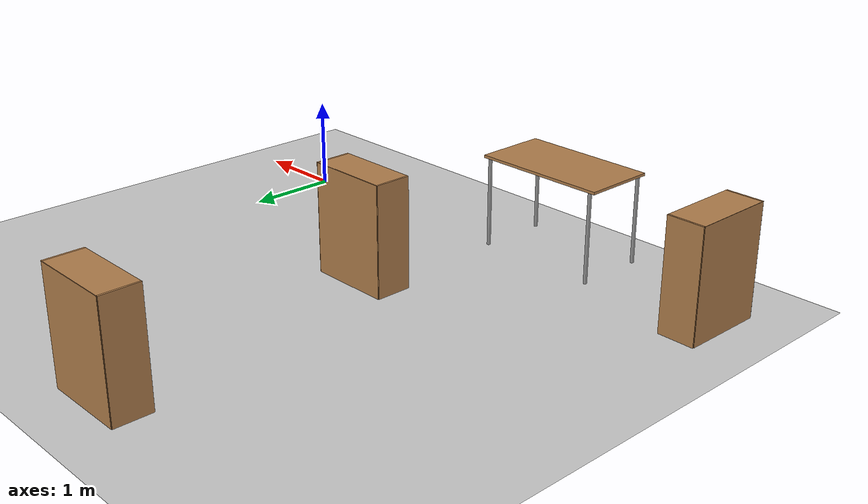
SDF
<sdf version="1.7">
 <world name="default">
  <model name="ground_plane">
   <static>1</static>
   <link name="link">
    <collision name="collision">
     <geometry><plane><normal>0 0 1</normal><size>100 100</size></plane></geometry>
     <surface>
      <contact><collide_bitmask>65535</collide_bitmask></contact>
      <friction><ode><mu>100</mu><mu2>50</mu2></ode></friction>
     </surface>
    </collision>
    <visual name="visual">
     <cast_shadows>0</cast_shadows>
     <geometry><plane><normal>0 0 1</normal><size>100 100</size></plane></geometry>
     <material>
      <script><uri>file://media/materials/scripts/gazebo.material</uri><name>Gazebo/Grey</name></script>
     </material>
    </visual>
   </link>
  </model>
  <model name="bookshelf">
   <static>1</static>
   <link name="link">
    <inertial><mass>1</mass></inertial>
    <collision name="back">
     <pose>0 0.005 0.6 0 -0 0</pose>
     <geometry><box><size>0.9 0.01 1.2</size></box></geometry>
    </collision>
    <visual name="visual1">
     <pose>0 0.005 0.6 0 -0 0</pose>
     <geometry><box><size>0.9 0.01 1.2</size></box></geometry>
     <material>
      <script><uri>file://media/materials/scripts/gazebo.material</uri><name>Gazebo/Wood</name></script>
     </material>
    </visual>
    <collision name="left_side">
     <pose>0.45 -0.195 0.6 0 -0 0</pose>
     <geometry><box><size>0.02 0.4 1.2</size></box></geometry>
    </collision>
    <visual name="visual2">
     <pose>0.45 -0.195 0.6 0 -0 0</pose>
     <geometry><box><size>0.02 0.4 1.2</size></box></geometry>
     <material>
      <script><uri>file://media/materials/scripts/gazebo.material</uri><name>Gazebo/Wood</name></script>
     </material>
    </visual>
    <collision name="right_side">
     <pose>-0.45 -0.195 0.6 0 -0 0</pose>
     <geometry><box><size>0.02 0.4 1.2</size></box></geometry>
    </collision>
    <visual name="visual3">
     <pose>-0.45 -0.195 0.6 0 -0 0</pose>
     <geometry><box><size>0.02 0.4 1.2</size></box></geometry>
     <material>
      <script><uri>file://media/materials/scripts/gazebo.material</uri><name>Gazebo/Wood</name></script>
     </material>
    </visual>
    <collision name="bottom">
     <pose>0 -0.195 0.03 0 -0 0</pose>
     <geometry><box><size>0.88 0.4 0.06</size></box></geometry>
    </collision>
    <visual name="visual4">
     <pose>0 -0.195 0.03 0 -0 0</pose>
     <geometry><box><size>0.88 0.4 0.06</size></box></geometry>
     <material>
      <script><uri>file://media/materials/scripts/gazebo.material</uri><name>Gazebo/Wood</name></script>
     </material>
    </visual>
    <collision name="top">
     <pose>0 -0.195 1.19 0 -0 0</pose>
     <geometry><box><size>0.88 0.4 0.02</size></box></geometry>
    </collision>
    <visual name="visual5">
     <pose>0 -0.195 1.19 0 -0 0</pose>
     <geometry><box><size>0.88 0.4 0.02</size></box></geometry>
     <material>
      <script><uri>file://media/materials/scripts/gazebo.material</uri><name>Gazebo/Wood</name></script>
     </material>
    </visual>
    <collision name="low_shelf">
     <pose>0 -0.195 0.43 0 -0 0</pose>
     <geometry><box><size>0.88 0.4 0.02</size></box></geometry>
    </collision>
    <visual name="visual6">
     <pose>0 -0.195 0.43 0 -0 0</pose>
     <geometry><box><size>0.88 0.4 0.02</size></box></geometry>
     <material>
      <script><uri>file://media/materials/scripts/gazebo.material</uri><name>Gazebo/Wood</name></script>
     </material>
    </visual>
    <collision name="high_shelf">
     <pose>0 -0.195 0.8 0 -0 0</pose>
     <geometry><box><size>0.88 0.4 0.02</size></box></geometry>
    </collision>
    <visual name="visual7">
     <pose>0 -0.195 0.8 0 -0 0</pose>
     <geometry><box><size>0.88 0.4 0.02</size></box></geometry>
     <material>
      <script><uri>file://media/materials/scripts/gazebo.material</uri><name>Gazebo/Wood</name></script>
     </material>
    </visual>
   </link>
   <pose>-2.46761 1.66972 0 0 -0 0</pose>
  </model>
  <model name="bookshelf_1">
   <static>1</static>
   <link name="link">
    <inertial><mass>1</mass></inertial>
    <collision name="back">
     <pose>0 0.005 0.6 0 -0 0</pose>
     <geometry><box><size>0.9 0.01 1.2</size></box></geometry>
    </collision>
    <visual name="visual1">
     <pose>0 0.005 0.6 0 -0 0</pose>
     <geometry><box><size>0.9 0.01 1.2</size></box></geometry>
     <material>
      <script><uri>file://media/materials/scripts/gazebo.material</uri><name>Gazebo/Wood</name></script>
     </material>
    </visual>
    <collision name="left_side">
     <pose>0.45 -0.195 0.6 0 -0 0</pose>
     <geometry><box><size>0.02 0.4 1.2</size></box></geometry>
    </collision>
    <visual name="visual2">
     <pose>0.45 -0.195 0.6 0 -0 0</pose>
     <geometry><box><size>0.02 0.4 1.2</size></box></geometry>
     <material>
      <script><uri>file://media/materials/scripts/gazebo.material</uri><name>Gazebo/Wood</name></script>
     </material>
    </visual>
    <collision name="right_side">
     <pose>-0.45 -0.195 0.6 0 -0 0</pose>
     <geometry><box><size>0.02 0.4 1.2</size></box></geometry>
    </collision>
    <visual name="visual3">
     <pose>-0.45 -0.195 0.6 0 -0 0</pose>
     <geometry><box><size>0.02 0.4 1.2</size></box></geometry>
     <material>
      <script><uri>file://media/materials/scripts/gazebo.material</uri><name>Gazebo/Wood</name></script>
     </material>
    </visual>
    <collision name="bottom">
     <pose>0 -0.195 0.03 0 -0 0</pose>
     <geometry><box><size>0.88 0.4 0.06</size></box></geometry>
    </collision>
    <visual name="visual4">
     <pose>0 -0.195 0.03 0 -0 0</pose>
     <geometry><box><size>0.88 0.4 0.06</size></box></geometry>
     <material>
      <script><uri>file://media/materials/scripts/gazebo.material</uri><name>Gazebo/Wood</name></script>
     </material>
    </visual>
    <collision name="top">
     <pose>0 -0.195 1.19 0 -0 0</pose>
     <geometry><box><size>0.88 0.4 0.02</size></box></geometry>
    </collision>
    <visual name="visual5">
     <pose>0 -0.195 1.19 0 -0 0</pose>
     <geometry><box><size>0.88 0.4 0.02</size></box></geometry>
     <material>
      <script><uri>file://media/materials/scripts/gazebo.material</uri><name>Gazebo/Wood</name></script>
     </material>
    </visual>
    <collision name="low_shelf">
     <pose>0 -0.195 0.43 0 -0 0</pose>
     <geometry><box><size>0.88 0.4 0.02</size></box></geometry>
    </collision>
    <visual name="visual6">
     <pose>0 -0.195 0.43 0 -0 0</pose>
     <geometry><box><size>0.88 0.4 0.02</size></box></geometry>
     <material>
      <script><uri>file://media/materials/scripts/gazebo.material</uri><name>Gazebo/Wood</name></script>
     </material>
    </visual>
    <collision name="high_shelf">
     <pose>0 -0.195 0.8 0 -0 0</pose>
     <geometry><box><size>0.88 0.4 0.02</size></box></geometry>
    </collision>
    <visual name="visual7">
     <pose>0 -0.195 0.8 0 -0 0</pose>
     <geometry><box><size>0.88 0.4 0.02</size></box></geometry>
     <material>
      <script><uri>file://media/materials/scripts/gazebo.material</uri><name>Gazebo/Wood</name></script>
     </material>
    </visual>
   </link>
   <pose>-5.63291 -0.214127 0 0 -0 1.56163</pose>
  </model>
  <model name="bookshelf_2">
   <static>1</static>
   <link name="link">
    <inertial><mass>1</mass></inertial>
    <collision name="back">
     <pose>0 0.005 0.6 0 -0 0</pose>
     <geometry><box><size>0.9 0.01 1.2</size></box></geometry>
    </collision>
    <visual name="visual1">
     <pose>0 0.005 0.6 0 -0 0</pose>
     <geometry><box><size>0.9 0.01 1.2</size></box></geometry>
     <material>
      <script><uri>file://media/materials/scripts/gazebo.material</uri><name>Gazebo/Wood</name></script>
     </material>
    </visual>
    <collision name="left_side">
     <pose>0.45 -0.195 0.6 0 -0 0</pose>
     <geometry><box><size>0.02 0.4 1.2</size></box></geometry>
    </collision>
    <visual name="visual2">
     <pose>0.45 -0.195 0.6 0 -0 0</pose>
     <geometry><box><size>0.02 0.4 1.2</size></box></geometry>
     <material>
      <script><uri>file://media/materials/scripts/gazebo.material</uri><name>Gazebo/Wood</name></script>
     </material>
    </visual>
    <collision name="right_side">
     <pose>-0.45 -0.195 0.6 0 -0 0</pose>
     <geometry><box><size>0.02 0.4 1.2</size></box></geometry>
    </collision>
    <visual name="visual3">
     <pose>-0.45 -0.195 0.6 0 -0 0</pose>
     <geometry><box><size>0.02 0.4 1.2</size></box></geometry>
     <material>
      <script><uri>file://media/materials/scripts/gazebo.material</uri><name>Gazebo/Wood</name></script>
     </material>
    </visual>
    <collision name="bottom">
     <pose>0 -0.195 0.03 0 -0 0</pose>
     <geometry><box><size>0.88 0.4 0.06</size></box></geometry>
    </collision>
    <visual name="visual4">
     <pose>0 -0.195 0.03 0 -0 0</pose>
     <geometry><box><size>0.88 0.4 0.06</size></box></geometry>
     <material>
      <script><uri>file://media/materials/scripts/gazebo.material</uri><name>Gazebo/Wood</name></script>
     </material>
    </visual>
    <collision name="top">
     <pose>0 -0.195 1.19 0 -0 0</pose>
     <geometry><box><size>0.88 0.4 0.02</size></box></geometry>
    </collision>
    <visual name="visual5">
     <pose>0 -0.195 1.19 0 -0 0</pose>
     <geometry><box><size>0.88 0.4 0.02</size></box></geometry>
     <material>
      <script><uri>file://media/materials/scripts/gazebo.material</uri><name>Gazebo/Wood</name></script>
     </material>
    </visual>
    <collision name="low_shelf">
     <pose>0 -0.195 0.43 0 -0 0</pose>
     <geometry><box><size>0.88 0.4 0.02</size></box></geometry>
    </collision>
    <visual name="visual6">
     <pose>0 -0.195 0.43 0 -0 0</pose>
     <geometry><box><size>0.88 0.4 0.02</size></box></geometry>
     <material>
      <script><uri>file://media/materials/scripts/gazebo.material</uri><name>Gazebo/Wood</name></script>
     </material>
    </visual>
    <collision name="high_shelf">
     <pose>0 -0.195 0.8 0 -0 0</pose>
     <geometry><box><size>0.88 0.4 0.02</size></box></geometry>
    </collision>
    <visual name="visual7">
     <pose>0 -0.195 0.8 0 -0 0</pose>
     <geometry><box><size>0.88 0.4 0.02</size></box></geometry>
     <material>
      <script><uri>file://media/materials/scripts/gazebo.material</uri><name>Gazebo/Wood</name></script>
     </material>
    </visual>
   </link>
   <pose>-2.78869 4.8124 0 0 -0 0</pose>
  </model>
  <model name="table">
   <static>1</static>
   <link name="link">
    <collision name="surface">
     <pose>0 0 1 0 -0 0</pose>
     <geometry><box><size>1.5 0.8 0.03</size></box></geometry>
     <surface><friction><ode><mu>0.6</mu><mu2>0.6</mu2></ode></friction></surface>
    </collision>
    <visual name="visual1">
     <pose>0 0 1 0 -0 0</pose>
     <geometry><box><size>1.5 0.8 0.03</size></box></geometry>
     <material>
      <script><uri>file://media/materials/scripts/gazebo.material</uri><name>Gazebo/Wood</name></script>
     </material>
    </visual>
    <collision name="front_left_leg">
     <pose>0.68 0.38 0.5 0 -0 0</pose>
     <geometry><cylinder><radius>0.02</radius><length>1</length></cylinder></geometry>
    </collision>
    <visual name="front_left_leg">
     <pose>0.68 0.38 0.5 0 -0 0</pose>
     <geometry><cylinder><radius>0.02</radius><length>1</length></cylinder></geometry>
     <material>
      <script><uri>file://media/materials/scripts/gazebo.material</uri><name>Gazebo/Grey</name></script>
     </material>
    </visual>
    <collision name="front_right_leg">
     <pose>0.68 -0.38 0.5 0 -0 0</pose>
     <geometry><cylinder><radius>0.02</radius><length>1</length></cylinder></geometry>
    </collision>
    <visual name="front_right_leg">
     <pose>0.68 -0.38 0.5 0 -0 0</pose>
     <geometry><cylinder><radius>0.02</radius><length>1</length></cylinder></geometry>
     <material>
      <script><uri>file://media/materials/scripts/gazebo.material</uri><name>Gazebo/Grey</name></script>
     </material>
    </visual>
    <collision name="back_right_leg">
     <pose>-0.68 -0.38 0.5 0 -0 0</pose>
     <geometry><cylinder><radius>0.02</radius><length>1</length></cylinder></geometry>
    </collision>
    <visual name="back_right_leg">
     <pose>-0.68 -0.38 0.5 0 -0 0</pose>
     <geometry><cylinder><radius>0.02</radius><length>1</length></cylinder></geometry>
     <material>
      <script><uri>file://media/materials/scripts/gazebo.material</uri><name>Gazebo/Grey</name></script>
     </material>
    </visual>
    <collision name="back_left_leg">
     <pose>-0.68 0.38 0.5 0 -0 0</pose>
     <geometry><cylinder><radius>0.02</radius><length>1</length></cylinder></geometry>
    </collision>
    <visual name="back_left_leg">
     <pose>-0.68 0.38 0.5 0 -0 0</pose>
     <geometry><cylinder><radius>0.02</radius><length>1</length></cylinder></geometry>
     <material>
      <script><uri>file://media/materials/scripts/gazebo.material</uri><name>Gazebo/Grey</name></script>
     </material>
    </visual>
   </link>
   <pose>-3.388 -0.480125 0 0 -0 0</pose>
  </model>
 </world>
</sdf>
